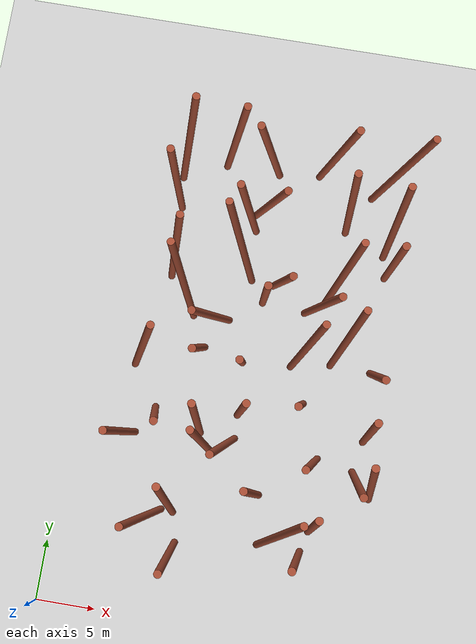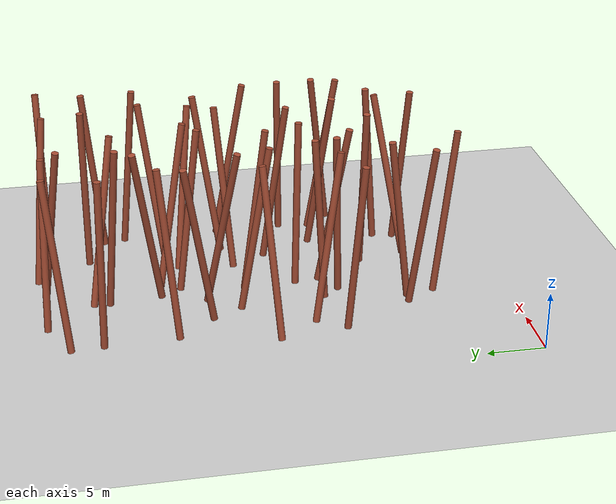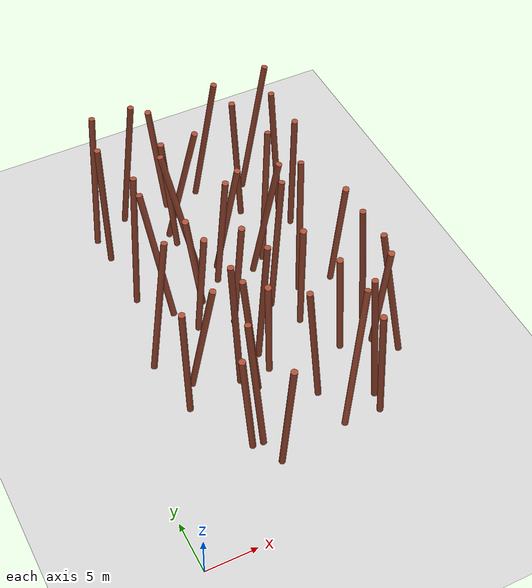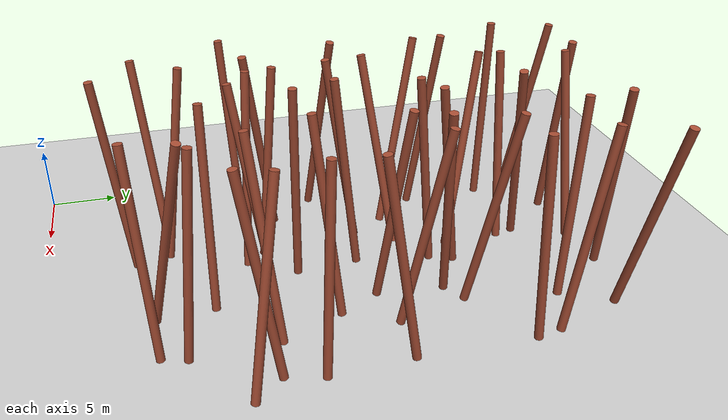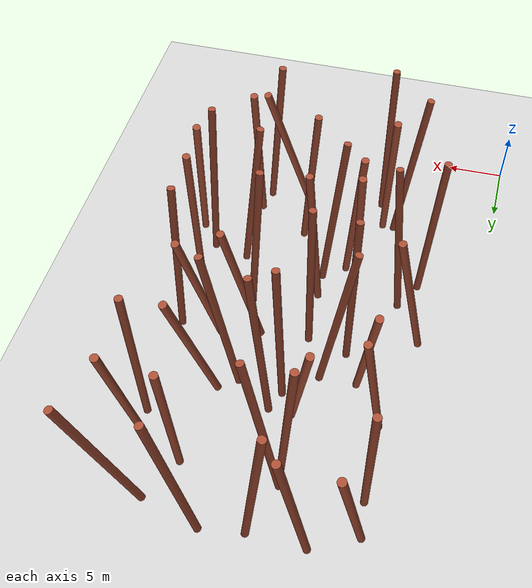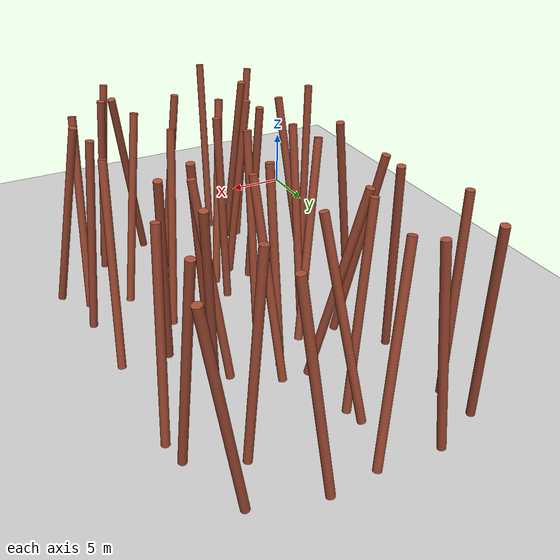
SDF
<sdf version="1.5">
 <world name="default">
  <include><uri>model://sun</uri></include>
  <include><uri>model://ground_plane</uri></include>
  <include><uri>model://asphalt_plane</uri><pose>0 0 -0.000001 0 0 0</pose></include>
  <model name="unit_cylinder_12">
   <pose>8.21517 8.51384 7.70000 0.08725 -0.11731 0.00000</pose>
   <gravity>0 0 0</gravity>
   <link name="link">
    <inertial>
     <mass>100</mass>
     <inertia><ixx>20</ixx><ixy>0</ixy><ixz>0</ixz><iyy>20</iyy><iyz>0</iyz><izz>20</izz></inertia>
    </inertial>
    <collision name="collision">
     <geometry><cylinder><radius>0.300</radius><length>15.000</length></cylinder></geometry>
    </collision>
    <visual name="visual">
     <geometry><cylinder><radius>0.300</radius><length>15.000</length></cylinder></geometry>
     <material>
      <script><name>Gazebo/Bricks</name><uri>file://media/materials/scripts/gazebo.material</uri></script>
     </material>
    </visual>
    <kinematic>1</kinematic>
   </link>
   <static>0</static>
   <plugin name="dynamic_obstacle_motion_12" filename="libobstaclePathPlugin.so">
    <motion_type>proximity_linear</motion_type>
    <direction>0.995938538 0.090035711 0.000000000</direction>
    <velocity>0.513485802</velocity>
    <activation_distance>20.000000000</activation_distance>
    <activation_model>iris</activation_model>
    <orientation>false</orientation>
    <marker_enabled>true</marker_enabled>
    <marker_id>12</marker_id>
    <marker_radius>0.300000000</marker_radius>
    <marker_height>15.000000000</marker_height>
    <marker_rate>20.0</marker_rate>
    <marker_topic>/uav_simulator/dynamic_obstacles</marker_topic>
    <marker_frame>map</marker_frame>
   </plugin>
  </model>
  <model name="unit_cylinder_13">
   <pose>5.41419 14.76799 7.70000 0.06608 -0.05039 0.00000</pose>
   <gravity>0 0 0</gravity>
   <link name="link">
    <inertial>
     <mass>100</mass>
     <inertia><ixx>20</ixx><ixy>0</ixy><ixz>0</ixz><iyy>20</iyy><iyz>0</iyz><izz>20</izz></inertia>
    </inertial>
    <collision name="collision">
     <geometry><cylinder><radius>0.300</radius><length>15.000</length></cylinder></geometry>
    </collision>
    <visual name="visual">
     <geometry><cylinder><radius>0.300</radius><length>15.000</length></cylinder></geometry>
     <material>
      <script><name>Gazebo/Bricks</name><uri>file://media/materials/scripts/gazebo.material</uri></script>
     </material>
    </visual>
   </link>
   <static>1</static>
  </model>
  <model name="unit_cylinder_14">
   <pose>7.78083 16.59841 7.70000 0.14490 0.08780 0.00000</pose>
   <gravity>0 0 0</gravity>
   <link name="link">
    <inertial>
     <mass>100</mass>
     <inertia><ixx>20</ixx><ixy>0</ixy><ixz>0</ixz><iyy>20</iyy><iyz>0</iyz><izz>20</izz></inertia>
    </inertial>
    <collision name="collision">
     <geometry><cylinder><radius>0.300</radius><length>15.000</length></cylinder></geometry>
    </collision>
    <visual name="visual">
     <geometry><cylinder><radius>0.300</radius><length>15.000</length></cylinder></geometry>
     <material>
      <script><name>Gazebo/Bricks</name><uri>file://media/materials/scripts/gazebo.material</uri></script>
     </material>
    </visual>
    <kinematic>1</kinematic>
   </link>
   <static>0</static>
   <plugin name="dynamic_obstacle_motion_14" filename="libobstaclePathPlugin.so">
    <motion_type>proximity_linear</motion_type>
    <direction>0.441147380 -0.897434671 0.000000000</direction>
    <velocity>0.627199507</velocity>
    <activation_distance>20.000000000</activation_distance>
    <activation_model>iris</activation_model>
    <orientation>false</orientation>
    <marker_enabled>true</marker_enabled>
    <marker_id>14</marker_id>
    <marker_radius>0.300000000</marker_radius>
    <marker_height>15.000000000</marker_height>
    <marker_rate>20.0</marker_rate>
    <marker_topic>/uav_simulator/dynamic_obstacles</marker_topic>
    <marker_frame>map</marker_frame>
   </plugin>
  </model>
  <model name="unit_cylinder_15">
   <pose>5.89723 21.64331 7.70000 -0.07898 0.15290 0.00000</pose>
   <gravity>0 0 0</gravity>
   <link name="link">
    <inertial>
     <mass>100</mass>
     <inertia><ixx>20</ixx><ixy>0</ixy><ixz>0</ixz><iyy>20</iyy><iyz>0</iyz><izz>20</izz></inertia>
    </inertial>
    <collision name="collision">
     <geometry><cylinder><radius>0.300</radius><length>15.000</length></cylinder></geometry>
    </collision>
    <visual name="visual">
     <geometry><cylinder><radius>0.300</radius><length>15.000</length></cylinder></geometry>
     <material>
      <script><name>Gazebo/Bricks</name><uri>file://media/materials/scripts/gazebo.material</uri></script>
     </material>
    </visual>
   </link>
   <static>1</static>
  </model>
  <model name="unit_cylinder_16">
   <pose>8.23481 27.26998 7.70000 -0.16573 -0.11002 0.00000</pose>
   <gravity>0 0 0</gravity>
   <link name="link">
    <inertial>
     <mass>100</mass>
     <inertia><ixx>20</ixx><ixy>0</ixy><ixz>0</ixz><iyy>20</iyy><iyz>0</iyz><izz>20</izz></inertia>
    </inertial>
    <collision name="collision">
     <geometry><cylinder><radius>0.300</radius><length>15.000</length></cylinder></geometry>
    </collision>
    <visual name="visual">
     <geometry><cylinder><radius>0.300</radius><length>15.000</length></cylinder></geometry>
     <material>
      <script><name>Gazebo/Bricks</name><uri>file://media/materials/scripts/gazebo.material</uri></script>
     </material>
    </visual>
    <kinematic>1</kinematic>
   </link>
   <static>0</static>
   <plugin name="dynamic_obstacle_motion_16" filename="libobstaclePathPlugin.so">
    <motion_type>proximity_linear</motion_type>
    <direction>-0.396383134 0.918085187 0.000000000</direction>
    <velocity>0.545856722</velocity>
    <activation_distance>20.000000000</activation_distance>
    <activation_model>iris</activation_model>
    <orientation>false</orientation>
    <marker_enabled>true</marker_enabled>
    <marker_id>16</marker_id>
    <marker_radius>0.300000000</marker_radius>
    <marker_height>15.000000000</marker_height>
    <marker_rate>20.0</marker_rate>
    <marker_topic>/uav_simulator/dynamic_obstacles</marker_topic>
    <marker_frame>map</marker_frame>
   </plugin>
  </model>
  <model name="unit_cylinder_17">
   <pose>7.14097 29.90582 7.70000 -0.09009 0.08101 0.00000</pose>
   <gravity>0 0 0</gravity>
   <link name="link">
    <inertial>
     <mass>100</mass>
     <inertia><ixx>20</ixx><ixy>0</ixy><ixz>0</ixz><iyy>20</iyy><iyz>0</iyz><izz>20</izz></inertia>
    </inertial>
    <collision name="collision">
     <geometry><cylinder><radius>0.300</radius><length>15.000</length></cylinder></geometry>
    </collision>
    <visual name="visual">
     <geometry><cylinder><radius>0.300</radius><length>15.000</length></cylinder></geometry>
     <material>
      <script><name>Gazebo/Bricks</name><uri>file://media/materials/scripts/gazebo.material</uri></script>
     </material>
    </visual>
    <kinematic>1</kinematic>
   </link>
   <static>0</static>
   <plugin name="dynamic_obstacle_motion_17" filename="libobstaclePathPlugin.so">
    <motion_type>proximity_linear</motion_type>
    <direction>-0.793099003 -0.609092744 0.000000000</direction>
    <velocity>0.191172605</velocity>
    <activation_distance>20.000000000</activation_distance>
    <activation_model>iris</activation_model>
    <orientation>false</orientation>
    <marker_enabled>true</marker_enabled>
    <marker_id>17</marker_id>
    <marker_radius>0.300000000</marker_radius>
    <marker_height>15.000000000</marker_height>
    <marker_rate>20.0</marker_rate>
    <marker_topic>/uav_simulator/dynamic_obstacles</marker_topic>
    <marker_frame>map</marker_frame>
   </plugin>
  </model>
  <model name="unit_cylinder_18">
   <pose>6.31902 35.40291 7.70000 0.00913 -0.01244 0.00000</pose>
   <gravity>0 0 0</gravity>
   <link name="link">
    <inertial>
     <mass>100</mass>
     <inertia><ixx>20</ixx><ixy>0</ixy><ixz>0</ixz><iyy>20</iyy><iyz>0</iyz><izz>20</izz></inertia>
    </inertial>
    <collision name="collision">
     <geometry><cylinder><radius>0.300</radius><length>15.000</length></cylinder></geometry>
    </collision>
    <visual name="visual">
     <geometry><cylinder><radius>0.300</radius><length>15.000</length></cylinder></geometry>
     <material>
      <script><name>Gazebo/Bricks</name><uri>file://media/materials/scripts/gazebo.material</uri></script>
     </material>
    </visual>
   </link>
   <static>1</static>
  </model>
  <model name="unit_cylinder_19">
   <pose>6.73714 38.90412 7.70000 -0.09685 0.08952 0.00000</pose>
   <gravity>0 0 0</gravity>
   <link name="link">
    <inertial>
     <mass>100</mass>
     <inertia><ixx>20</ixx><ixy>0</ixy><ixz>0</ixz><iyy>20</iyy><iyz>0</iyz><izz>20</izz></inertia>
    </inertial>
    <collision name="collision">
     <geometry><cylinder><radius>0.300</radius><length>15.000</length></cylinder></geometry>
    </collision>
    <visual name="visual">
     <geometry><cylinder><radius>0.300</radius><length>15.000</length></cylinder></geometry>
     <material>
      <script><name>Gazebo/Bricks</name><uri>file://media/materials/scripts/gazebo.material</uri></script>
     </material>
    </visual>
   </link>
   <static>1</static>
  </model>
  <model name="unit_cylinder_31">
   <pose>10.62233 5.86521 7.70000 0.09819 -0.00858 0.00000</pose>
   <gravity>0 0 0</gravity>
   <link name="link">
    <inertial>
     <mass>100</mass>
     <inertia><ixx>20</ixx><ixy>0</ixy><ixz>0</ixz><iyy>20</iyy><iyz>0</iyz><izz>20</izz></inertia>
    </inertial>
    <collision name="collision">
     <geometry><cylinder><radius>0.300</radius><length>15.000</length></cylinder></geometry>
    </collision>
    <visual name="visual">
     <geometry><cylinder><radius>0.300</radius><length>15.000</length></cylinder></geometry>
     <material>
      <script><name>Gazebo/Bricks</name><uri>file://media/materials/scripts/gazebo.material</uri></script>
     </material>
    </visual>
    <kinematic>1</kinematic>
   </link>
   <static>0</static>
   <plugin name="dynamic_obstacle_motion_31" filename="libobstaclePathPlugin.so">
    <motion_type>proximity_linear</motion_type>
    <direction>0.941621761 0.336672631 0.000000000</direction>
    <velocity>0.304543873</velocity>
    <activation_distance>20.000000000</activation_distance>
    <activation_model>iris</activation_model>
    <orientation>false</orientation>
    <marker_enabled>true</marker_enabled>
    <marker_id>31</marker_id>
    <marker_radius>0.300000000</marker_radius>
    <marker_height>15.000000000</marker_height>
    <marker_rate>20.0</marker_rate>
    <marker_topic>/uav_simulator/dynamic_obstacles</marker_topic>
    <marker_frame>map</marker_frame>
   </plugin>
  </model>
  <model name="unit_cylinder_32">
   <pose>9.75933 10.02540 7.70000 -0.12920 -0.04675 0.00000</pose>
   <gravity>0 0 0</gravity>
   <link name="link">
    <inertial>
     <mass>100</mass>
     <inertia><ixx>20</ixx><ixy>0</ixy><ixz>0</ixz><iyy>20</iyy><iyz>0</iyz><izz>20</izz></inertia>
    </inertial>
    <collision name="collision">
     <geometry><cylinder><radius>0.300</radius><length>15.000</length></cylinder></geometry>
    </collision>
    <visual name="visual">
     <geometry><cylinder><radius>0.300</radius><length>15.000</length></cylinder></geometry>
     <material>
      <script><name>Gazebo/Bricks</name><uri>file://media/materials/scripts/gazebo.material</uri></script>
     </material>
    </visual>
   </link>
   <static>1</static>
  </model>
  <model name="unit_cylinder_33">
   <pose>11.75306 14.98486 7.70000 -0.04157 -0.08951 0.00000</pose>
   <gravity>0 0 0</gravity>
   <link name="link">
    <inertial>
     <mass>100</mass>
     <inertia><ixx>20</ixx><ixy>0</ixy><ixz>0</ixz><iyy>20</iyy><iyz>0</iyz><izz>20</izz></inertia>
    </inertial>
    <collision name="collision">
     <geometry><cylinder><radius>0.300</radius><length>15.000</length></cylinder></geometry>
    </collision>
    <visual name="visual">
     <geometry><cylinder><radius>0.300</radius><length>15.000</length></cylinder></geometry>
     <material>
      <script><name>Gazebo/Bricks</name><uri>file://media/materials/scripts/gazebo.material</uri></script>
     </material>
    </visual>
   </link>
   <static>1</static>
  </model>
  <model name="unit_cylinder_34">
   <pose>11.08620 16.61533 7.70000 -0.07178 -0.02795 0.00000</pose>
   <gravity>0 0 0</gravity>
   <link name="link">
    <inertial>
     <mass>100</mass>
     <inertia><ixx>20</ixx><ixy>0</ixy><ixz>0</ixz><iyy>20</iyy><iyz>0</iyz><izz>20</izz></inertia>
    </inertial>
    <collision name="collision">
     <geometry><cylinder><radius>0.300</radius><length>15.000</length></cylinder></geometry>
    </collision>
    <visual name="visual">
     <geometry><cylinder><radius>0.300</radius><length>15.000</length></cylinder></geometry>
     <material>
      <script><name>Gazebo/Bricks</name><uri>file://media/materials/scripts/gazebo.material</uri></script>
     </material>
    </visual>
    <kinematic>1</kinematic>
   </link>
   <static>0</static>
   <plugin name="dynamic_obstacle_motion_34" filename="libobstaclePathPlugin.so">
    <motion_type>proximity_linear</motion_type>
    <direction>-0.805528988 -0.592556368 0.000000000</direction>
    <velocity>0.839050458</velocity>
    <activation_distance>20.000000000</activation_distance>
    <activation_model>iris</activation_model>
    <orientation>false</orientation>
    <marker_enabled>true</marker_enabled>
    <marker_id>34</marker_id>
    <marker_radius>0.300000000</marker_radius>
    <marker_height>15.000000000</marker_height>
    <marker_rate>20.0</marker_rate>
    <marker_topic>/uav_simulator/dynamic_obstacles</marker_topic>
    <marker_frame>map</marker_frame>
   </plugin>
  </model>
  <model name="unit_cylinder_35">
   <pose>10.35482 22.26778 7.70000 0.16136 -0.01436 0.00000</pose>
   <gravity>0 0 0</gravity>
   <link name="link">
    <inertial>
     <mass>100</mass>
     <inertia><ixx>20</ixx><ixy>0</ixy><ixz>0</ixz><iyy>20</iyy><iyz>0</iyz><izz>20</izz></inertia>
    </inertial>
    <collision name="collision">
     <geometry><cylinder><radius>0.300</radius><length>15.000</length></cylinder></geometry>
    </collision>
    <visual name="visual">
     <geometry><cylinder><radius>0.300</radius><length>15.000</length></cylinder></geometry>
     <material>
      <script><name>Gazebo/Bricks</name><uri>file://media/materials/scripts/gazebo.material</uri></script>
     </material>
    </visual>
   </link>
   <static>1</static>
  </model>
  <model name="unit_cylinder_36">
   <pose>10.95184 24.97060 7.70000 0.15713 -0.16388 0.00000</pose>
   <gravity>0 0 0</gravity>
   <link name="link">
    <inertial>
     <mass>100</mass>
     <inertia><ixx>20</ixx><ixy>0</ixy><ixz>0</ixz><iyy>20</iyy><iyz>0</iyz><izz>20</izz></inertia>
    </inertial>
    <collision name="collision">
     <geometry><cylinder><radius>0.300</radius><length>15.000</length></cylinder></geometry>
    </collision>
    <visual name="visual">
     <geometry><cylinder><radius>0.300</radius><length>15.000</length></cylinder></geometry>
     <material>
      <script><name>Gazebo/Bricks</name><uri>file://media/materials/scripts/gazebo.material</uri></script>
     </material>
    </visual>
    <kinematic>1</kinematic>
   </link>
   <static>0</static>
   <plugin name="dynamic_obstacle_motion_36" filename="libobstaclePathPlugin.so">
    <motion_type>proximity_linear</motion_type>
    <direction>0.986785743 -0.162030542 0.000000000</direction>
    <velocity>0.523264352</velocity>
    <activation_distance>20.000000000</activation_distance>
    <activation_model>iris</activation_model>
    <orientation>false</orientation>
    <marker_enabled>true</marker_enabled>
    <marker_id>36</marker_id>
    <marker_radius>0.300000000</marker_radius>
    <marker_height>15.000000000</marker_height>
    <marker_rate>20.0</marker_rate>
    <marker_topic>/uav_simulator/dynamic_obstacles</marker_topic>
    <marker_frame>map</marker_frame>
   </plugin>
  </model>
  <model name="unit_cylinder_37">
   <pose>12.32426 31.04766 7.70000 -0.15146 -0.16482 0.00000</pose>
   <gravity>0 0 0</gravity>
   <link name="link">
    <inertial>
     <mass>100</mass>
     <inertia><ixx>20</ixx><ixy>0</ixy><ixz>0</ixz><iyy>20</iyy><iyz>0</iyz><izz>20</izz></inertia>
    </inertial>
    <collision name="collision">
     <geometry><cylinder><radius>0.300</radius><length>15.000</length></cylinder></geometry>
    </collision>
    <visual name="visual">
     <geometry><cylinder><radius>0.300</radius><length>15.000</length></cylinder></geometry>
     <material>
      <script><name>Gazebo/Bricks</name><uri>file://media/materials/scripts/gazebo.material</uri></script>
     </material>
    </visual>
    <kinematic>1</kinematic>
   </link>
   <static>0</static>
   <plugin name="dynamic_obstacle_motion_37" filename="libobstaclePathPlugin.so">
    <motion_type>proximity_linear</motion_type>
    <direction>-0.922083876 -0.386990085 0.000000000</direction>
    <velocity>0.522626707</velocity>
    <activation_distance>20.000000000</activation_distance>
    <activation_model>iris</activation_model>
    <orientation>false</orientation>
    <marker_enabled>true</marker_enabled>
    <marker_id>37</marker_id>
    <marker_radius>0.300000000</marker_radius>
    <marker_height>15.000000000</marker_height>
    <marker_rate>20.0</marker_rate>
    <marker_topic>/uav_simulator/dynamic_obstacles</marker_topic>
    <marker_frame>map</marker_frame>
   </plugin>
  </model>
  <model name="unit_cylinder_38">
   <pose>12.47575 33.96208 7.70000 0.05793 -0.09766 0.00000</pose>
   <gravity>0 0 0</gravity>
   <link name="link">
    <inertial>
     <mass>100</mass>
     <inertia><ixx>20</ixx><ixy>0</ixy><ixz>0</ixz><iyy>20</iyy><iyz>0</iyz><izz>20</izz></inertia>
    </inertial>
    <collision name="collision">
     <geometry><cylinder><radius>0.300</radius><length>15.000</length></cylinder></geometry>
    </collision>
    <visual name="visual">
     <geometry><cylinder><radius>0.300</radius><length>15.000</length></cylinder></geometry>
     <material>
      <script><name>Gazebo/Bricks</name><uri>file://media/materials/scripts/gazebo.material</uri></script>
     </material>
    </visual>
   </link>
   <static>1</static>
  </model>
  <model name="unit_cylinder_39">
   <pose>10.51650 39.66156 7.70000 0.02668 0.10310 0.00000</pose>
   <gravity>0 0 0</gravity>
   <link name="link">
    <inertial>
     <mass>100</mass>
     <inertia><ixx>20</ixx><ixy>0</ixy><ixz>0</ixz><iyy>20</iyy><iyz>0</iyz><izz>20</izz></inertia>
    </inertial>
    <collision name="collision">
     <geometry><cylinder><radius>0.300</radius><length>15.000</length></cylinder></geometry>
    </collision>
    <visual name="visual">
     <geometry><cylinder><radius>0.300</radius><length>15.000</length></cylinder></geometry>
     <material>
      <script><name>Gazebo/Bricks</name><uri>file://media/materials/scripts/gazebo.material</uri></script>
     </material>
    </visual>
   </link>
   <static>1</static>
  </model>
  <model name="unit_cylinder_52">
   <pose>16.28005 11.67969 7.70000 -0.00035 -0.10513 0.00000</pose>
   <gravity>0 0 0</gravity>
   <link name="link">
    <inertial>
     <mass>100</mass>
     <inertia><ixx>20</ixx><ixy>0</ixy><ixz>0</ixz><iyy>20</iyy><iyz>0</iyz><izz>20</izz></inertia>
    </inertial>
    <collision name="collision">
     <geometry><cylinder><radius>0.300</radius><length>15.000</length></cylinder></geometry>
    </collision>
    <visual name="visual">
     <geometry><cylinder><radius>0.300</radius><length>15.000</length></cylinder></geometry>
     <material>
      <script><name>Gazebo/Bricks</name><uri>file://media/materials/scripts/gazebo.material</uri></script>
     </material>
    </visual>
   </link>
   <static>1</static>
  </model>
  <model name="unit_cylinder_53">
   <pose>13.49913 14.95605 7.70000 0.14993 -0.10484 0.00000</pose>
   <gravity>0 0 0</gravity>
   <link name="link">
    <inertial>
     <mass>100</mass>
     <inertia><ixx>20</ixx><ixy>0</ixy><ixz>0</ixz><iyy>20</iyy><iyz>0</iyz><izz>20</izz></inertia>
    </inertial>
    <collision name="collision">
     <geometry><cylinder><radius>0.300</radius><length>15.000</length></cylinder></geometry>
    </collision>
    <visual name="visual">
     <geometry><cylinder><radius>0.300</radius><length>15.000</length></cylinder></geometry>
     <material>
      <script><name>Gazebo/Bricks</name><uri>file://media/materials/scripts/gazebo.material</uri></script>
     </material>
    </visual>
   </link>
   <static>1</static>
  </model>
  <model name="unit_cylinder_54">
   <pose>14.44280 17.95082 7.70000 0.02150 0.03398 0.00000</pose>
   <gravity>0 0 0</gravity>
   <link name="link">
    <inertial>
     <mass>100</mass>
     <inertia><ixx>20</ixx><ixy>0</ixy><ixz>0</ixz><iyy>20</iyy><iyz>0</iyz><izz>20</izz></inertia>
    </inertial>
    <collision name="collision">
     <geometry><cylinder><radius>0.300</radius><length>15.000</length></cylinder></geometry>
    </collision>
    <visual name="visual">
     <geometry><cylinder><radius>0.300</radius><length>15.000</length></cylinder></geometry>
     <material>
      <script><name>Gazebo/Bricks</name><uri>file://media/materials/scripts/gazebo.material</uri></script>
     </material>
    </visual>
   </link>
   <static>1</static>
  </model>
  <model name="unit_cylinder_55">
   <pose>13.81095 21.73694 7.70000 0.12512 -0.01164 0.00000</pose>
   <gravity>0 0 0</gravity>
   <link name="link">
    <inertial>
     <mass>100</mass>
     <inertia><ixx>20</ixx><ixy>0</ixy><ixz>0</ixz><iyy>20</iyy><iyz>0</iyz><izz>20</izz></inertia>
    </inertial>
    <collision name="collision">
     <geometry><cylinder><radius>0.300</radius><length>15.000</length></cylinder></geometry>
    </collision>
    <visual name="visual">
     <geometry><cylinder><radius>0.300</radius><length>15.000</length></cylinder></geometry>
     <material>
      <script><name>Gazebo/Bricks</name><uri>file://media/materials/scripts/gazebo.material</uri></script>
     </material>
    </visual>
   </link>
   <static>1</static>
  </model>
  <model name="unit_cylinder_56">
   <pose>14.83115 27.28360 7.70000 0.11515 0.00834 0.00000</pose>
   <gravity>0 0 0</gravity>
   <link name="link">
    <inertial>
     <mass>100</mass>
     <inertia><ixx>20</ixx><ixy>0</ixy><ixz>0</ixz><iyy>20</iyy><iyz>0</iyz><izz>20</izz></inertia>
    </inertial>
    <collision name="collision">
     <geometry><cylinder><radius>0.300</radius><length>15.000</length></cylinder></geometry>
    </collision>
    <visual name="visual">
     <geometry><cylinder><radius>0.300</radius><length>15.000</length></cylinder></geometry>
     <material>
      <script><name>Gazebo/Bricks</name><uri>file://media/materials/scripts/gazebo.material</uri></script>
     </material>
    </visual>
   </link>
   <static>1</static>
  </model>
  <model name="unit_cylinder_57">
   <pose>16.00750 28.59517 7.70000 0.15929 0.07561 0.00000</pose>
   <gravity>0 0 0</gravity>
   <link name="link">
    <inertial>
     <mass>100</mass>
     <inertia><ixx>20</ixx><ixy>0</ixy><ixz>0</ixz><iyy>20</iyy><iyz>0</iyz><izz>20</izz></inertia>
    </inertial>
    <collision name="collision">
     <geometry><cylinder><radius>0.300</radius><length>15.000</length></cylinder></geometry>
    </collision>
    <visual name="visual">
     <geometry><cylinder><radius>0.300</radius><length>15.000</length></cylinder></geometry>
     <material>
      <script><name>Gazebo/Bricks</name><uri>file://media/materials/scripts/gazebo.material</uri></script>
     </material>
    </visual>
    <kinematic>1</kinematic>
   </link>
   <static>0</static>
   <plugin name="dynamic_obstacle_motion_57" filename="libobstaclePathPlugin.so">
    <motion_type>proximity_linear</motion_type>
    <direction>0.526953848 0.849893901 -0.000000000</direction>
    <velocity>0.597910536</velocity>
    <activation_distance>20.000000000</activation_distance>
    <activation_model>iris</activation_model>
    <orientation>false</orientation>
    <marker_enabled>true</marker_enabled>
    <marker_id>57</marker_id>
    <marker_radius>0.300000000</marker_radius>
    <marker_height>15.000000000</marker_height>
    <marker_rate>20.0</marker_rate>
    <marker_topic>/uav_simulator/dynamic_obstacles</marker_topic>
    <marker_frame>map</marker_frame>
   </plugin>
  </model>
  <model name="unit_cylinder_58">
   <pose>14.08418 34.70862 7.70000 0.14385 0.15441 0.00000</pose>
   <gravity>0 0 0</gravity>
   <link name="link">
    <inertial>
     <mass>100</mass>
     <inertia><ixx>20</ixx><ixy>0</ixy><ixz>0</ixz><iyy>20</iyy><iyz>0</iyz><izz>20</izz></inertia>
    </inertial>
    <collision name="collision">
     <geometry><cylinder><radius>0.300</radius><length>15.000</length></cylinder></geometry>
    </collision>
    <visual name="visual">
     <geometry><cylinder><radius>0.300</radius><length>15.000</length></cylinder></geometry>
     <material>
      <script><name>Gazebo/Bricks</name><uri>file://media/materials/scripts/gazebo.material</uri></script>
     </material>
    </visual>
    <kinematic>1</kinematic>
   </link>
   <static>0</static>
   <plugin name="dynamic_obstacle_motion_58" filename="libobstaclePathPlugin.so">
    <motion_type>proximity_linear</motion_type>
    <direction>-0.673704427 -0.739000910 0.000000000</direction>
    <velocity>1.136233322</velocity>
    <activation_distance>20.000000000</activation_distance>
    <activation_model>iris</activation_model>
    <orientation>false</orientation>
    <marker_enabled>true</marker_enabled>
    <marker_id>58</marker_id>
    <marker_radius>0.300000000</marker_radius>
    <marker_height>15.000000000</marker_height>
    <marker_rate>20.0</marker_rate>
    <marker_topic>/uav_simulator/dynamic_obstacles</marker_topic>
    <marker_frame>map</marker_frame>
   </plugin>
  </model>
  <model name="unit_cylinder_59">
   <pose>13.47687 38.98313 7.70000 0.10550 -0.13182 0.00000</pose>
   <gravity>0 0 0</gravity>
   <link name="link">
    <inertial>
     <mass>100</mass>
     <inertia><ixx>20</ixx><ixy>0</ixy><ixz>0</ixz><iyy>20</iyy><iyz>0</iyz><izz>20</izz></inertia>
    </inertial>
    <collision name="collision">
     <geometry><cylinder><radius>0.300</radius><length>15.000</length></cylinder></geometry>
    </collision>
    <visual name="visual">
     <geometry><cylinder><radius>0.300</radius><length>15.000</length></cylinder></geometry>
     <material>
      <script><name>Gazebo/Bricks</name><uri>file://media/materials/scripts/gazebo.material</uri></script>
     </material>
    </visual>
   </link>
   <static>1</static>
  </model>
  <model name="unit_cylinder_71">
   <pose>20.45233 7.19638 7.70000 0.05097 -0.10483 0.00000</pose>
   <gravity>0 0 0</gravity>
   <link name="link">
    <inertial>
     <mass>100</mass>
     <inertia><ixx>20</ixx><ixy>0</ixy><ixz>0</ixz><iyy>20</iyy><iyz>0</iyz><izz>20</izz></inertia>
    </inertial>
    <collision name="collision">
     <geometry><cylinder><radius>0.300</radius><length>15.000</length></cylinder></geometry>
    </collision>
    <visual name="visual">
     <geometry><cylinder><radius>0.300</radius><length>15.000</length></cylinder></geometry>
     <material>
      <script><name>Gazebo/Bricks</name><uri>file://media/materials/scripts/gazebo.material</uri></script>
     </material>
    </visual>
    <kinematic>1</kinematic>
   </link>
   <static>0</static>
   <plugin name="dynamic_obstacle_motion_71" filename="libobstaclePathPlugin.so">
    <motion_type>proximity_linear</motion_type>
    <direction>-0.734474025 -0.678636801 0.000000000</direction>
    <velocity>1.929991831</velocity>
    <activation_distance>20.000000000</activation_distance>
    <activation_model>iris</activation_model>
    <orientation>false</orientation>
    <marker_enabled>true</marker_enabled>
    <marker_id>71</marker_id>
    <marker_radius>0.300000000</marker_radius>
    <marker_height>15.000000000</marker_height>
    <marker_rate>20.0</marker_rate>
    <marker_topic>/uav_simulator/dynamic_obstacles</marker_topic>
    <marker_frame>map</marker_frame>
   </plugin>
  </model>
  <model name="unit_cylinder_72">
   <pose>18.79728 8.77237 7.70000 -0.16252 0.17001 0.00000</pose>
   <gravity>0 0 0</gravity>
   <link name="link">
    <inertial>
     <mass>100</mass>
     <inertia><ixx>20</ixx><ixy>0</ixy><ixz>0</ixz><iyy>20</iyy><iyz>0</iyz><izz>20</izz></inertia>
    </inertial>
    <collision name="collision">
     <geometry><cylinder><radius>0.300</radius><length>15.000</length></cylinder></geometry>
    </collision>
    <visual name="visual">
     <geometry><cylinder><radius>0.300</radius><length>15.000</length></cylinder></geometry>
     <material>
      <script><name>Gazebo/Bricks</name><uri>file://media/materials/scripts/gazebo.material</uri></script>
     </material>
    </visual>
   </link>
   <static>1</static>
  </model>
  <model name="unit_cylinder_73">
   <pose>20.54561 14.69287 7.70000 0.11079 -0.13135 0.00000</pose>
   <gravity>0 0 0</gravity>
   <link name="link">
    <inertial>
     <mass>100</mass>
     <inertia><ixx>20</ixx><ixy>0</ixy><ixz>0</ixz><iyy>20</iyy><iyz>0</iyz><izz>20</izz></inertia>
    </inertial>
    <collision name="collision">
     <geometry><cylinder><radius>0.300</radius><length>15.000</length></cylinder></geometry>
    </collision>
    <visual name="visual">
     <geometry><cylinder><radius>0.300</radius><length>15.000</length></cylinder></geometry>
     <material>
      <script><name>Gazebo/Bricks</name><uri>file://media/materials/scripts/gazebo.material</uri></script>
     </material>
    </visual>
   </link>
   <static>1</static>
  </model>
  <model name="unit_cylinder_74">
   <pose>18.99965 19.09175 7.70000 0.12146 -0.08443 0.00000</pose>
   <gravity>0 0 0</gravity>
   <link name="link">
    <inertial>
     <mass>100</mass>
     <inertia><ixx>20</ixx><ixy>0</ixy><ixz>0</ixz><iyy>20</iyy><iyz>0</iyz><izz>20</izz></inertia>
    </inertial>
    <collision name="collision">
     <geometry><cylinder><radius>0.300</radius><length>15.000</length></cylinder></geometry>
    </collision>
    <visual name="visual">
     <geometry><cylinder><radius>0.300</radius><length>15.000</length></cylinder></geometry>
     <material>
      <script><name>Gazebo/Bricks</name><uri>file://media/materials/scripts/gazebo.material</uri></script>
     </material>
    </visual>
   </link>
   <static>1</static>
  </model>
  <model name="unit_cylinder_75">
   <pose>18.74578 23.63822 7.70000 -0.08821 0.09516 0.00000</pose>
   <gravity>0 0 0</gravity>
   <link name="link">
    <inertial>
     <mass>100</mass>
     <inertia><ixx>20</ixx><ixy>0</ixy><ixz>0</ixz><iyy>20</iyy><iyz>0</iyz><izz>20</izz></inertia>
    </inertial>
    <collision name="collision">
     <geometry><cylinder><radius>0.300</radius><length>15.000</length></cylinder></geometry>
    </collision>
    <visual name="visual">
     <geometry><cylinder><radius>0.300</radius><length>15.000</length></cylinder></geometry>
     <material>
      <script><name>Gazebo/Bricks</name><uri>file://media/materials/scripts/gazebo.material</uri></script>
     </material>
    </visual>
   </link>
   <static>1</static>
  </model>
  <model name="unit_cylinder_76">
   <pose>19.40873 27.16889 7.70000 0.08984 0.12076 0.00000</pose>
   <gravity>0 0 0</gravity>
   <link name="link">
    <inertial>
     <mass>100</mass>
     <inertia><ixx>20</ixx><ixy>0</ixy><ixz>0</ixz><iyy>20</iyy><iyz>0</iyz><izz>20</izz></inertia>
    </inertial>
    <collision name="collision">
     <geometry><cylinder><radius>0.300</radius><length>15.000</length></cylinder></geometry>
    </collision>
    <visual name="visual">
     <geometry><cylinder><radius>0.300</radius><length>15.000</length></cylinder></geometry>
     <material>
      <script><name>Gazebo/Bricks</name><uri>file://media/materials/scripts/gazebo.material</uri></script>
     </material>
    </visual>
   </link>
   <static>1</static>
  </model>
  <model name="unit_cylinder_77">
   <pose>20.68333 29.74196 7.70000 -0.12683 0.08642 0.00000</pose>
   <gravity>0 0 0</gravity>
   <link name="link">
    <inertial>
     <mass>100</mass>
     <inertia><ixx>20</ixx><ixy>0</ixy><ixz>0</ixz><iyy>20</iyy><iyz>0</iyz><izz>20</izz></inertia>
    </inertial>
    <collision name="collision">
     <geometry><cylinder><radius>0.300</radius><length>15.000</length></cylinder></geometry>
    </collision>
    <visual name="visual">
     <geometry><cylinder><radius>0.300</radius><length>15.000</length></cylinder></geometry>
     <material>
      <script><name>Gazebo/Bricks</name><uri>file://media/materials/scripts/gazebo.material</uri></script>
     </material>
    </visual>
    <kinematic>1</kinematic>
   </link>
   <static>0</static>
   <plugin name="dynamic_obstacle_motion_77" filename="libobstaclePathPlugin.so">
    <motion_type>proximity_linear</motion_type>
    <direction>0.736576509 0.676354231 0.000000000</direction>
    <velocity>0.297112664</velocity>
    <activation_distance>20.000000000</activation_distance>
    <activation_model>iris</activation_model>
    <orientation>false</orientation>
    <marker_enabled>true</marker_enabled>
    <marker_id>77</marker_id>
    <marker_radius>0.300000000</marker_radius>
    <marker_height>15.000000000</marker_height>
    <marker_rate>20.0</marker_rate>
    <marker_topic>/uav_simulator/dynamic_obstacles</marker_topic>
    <marker_frame>map</marker_frame>
   </plugin>
  </model>
  <model name="unit_cylinder_78">
   <pose>20.52641 35.63094 7.70000 -0.01053 -0.06078 0.00000</pose>
   <gravity>0 0 0</gravity>
   <link name="link">
    <inertial>
     <mass>100</mass>
     <inertia><ixx>20</ixx><ixy>0</ixy><ixz>0</ixz><iyy>20</iyy><iyz>0</iyz><izz>20</izz></inertia>
    </inertial>
    <collision name="collision">
     <geometry><cylinder><radius>0.300</radius><length>15.000</length></cylinder></geometry>
    </collision>
    <visual name="visual">
     <geometry><cylinder><radius>0.300</radius><length>15.000</length></cylinder></geometry>
     <material>
      <script><name>Gazebo/Bricks</name><uri>file://media/materials/scripts/gazebo.material</uri></script>
     </material>
    </visual>
   </link>
   <static>1</static>
  </model>
  <model name="unit_cylinder_79">
   <pose>18.86415 39.61155 7.70000 0.08179 0.12048 0.00000</pose>
   <gravity>0 0 0</gravity>
   <link name="link">
    <inertial>
     <mass>100</mass>
     <inertia><ixx>20</ixx><ixy>0</ixy><ixz>0</ixz><iyy>20</iyy><iyz>0</iyz><izz>20</izz></inertia>
    </inertial>
    <collision name="collision">
     <geometry><cylinder><radius>0.300</radius><length>15.000</length></cylinder></geometry>
    </collision>
    <visual name="visual">
     <geometry><cylinder><radius>0.300</radius><length>15.000</length></cylinder></geometry>
     <material>
      <script><name>Gazebo/Bricks</name><uri>file://media/materials/scripts/gazebo.material</uri></script>
     </material>
    </visual>
    <kinematic>1</kinematic>
   </link>
   <static>0</static>
   <plugin name="dynamic_obstacle_motion_79" filename="libobstaclePathPlugin.so">
    <motion_type>proximity_linear</motion_type>
    <direction>0.226051030 0.974115461 0.000000000</direction>
    <velocity>0.981980058</velocity>
    <activation_distance>20.000000000</activation_distance>
    <activation_model>iris</activation_model>
    <orientation>false</orientation>
    <marker_enabled>true</marker_enabled>
    <marker_id>79</marker_id>
    <marker_radius>0.300000000</marker_radius>
    <marker_height>15.000000000</marker_height>
    <marker_rate>20.0</marker_rate>
    <marker_topic>/uav_simulator/dynamic_obstacles</marker_topic>
    <marker_frame>map</marker_frame>
   </plugin>
  </model>
  <model name="unit_cylinder_92">
   <pose>21.35000 9.91897 7.70000 -0.08006 -0.04341 0.00000</pose>
   <gravity>0 0 0</gravity>
   <link name="link">
    <inertial>
     <mass>100</mass>
     <inertia><ixx>20</ixx><ixy>0</ixy><ixz>0</ixz><iyy>20</iyy><iyz>0</iyz><izz>20</izz></inertia>
    </inertial>
    <collision name="collision">
     <geometry><cylinder><radius>0.300</radius><length>15.000</length></cylinder></geometry>
    </collision>
    <visual name="visual">
     <geometry><cylinder><radius>0.300</radius><length>15.000</length></cylinder></geometry>
     <material>
      <script><name>Gazebo/Bricks</name><uri>file://media/materials/scripts/gazebo.material</uri></script>
     </material>
    </visual>
   </link>
   <static>1</static>
  </model>
  <model name="unit_cylinder_93">
   <pose>24.23638 13.75703 7.70000 0.15385 -0.05172 0.00000</pose>
   <gravity>0 0 0</gravity>
   <link name="link">
    <inertial>
     <mass>100</mass>
     <inertia><ixx>20</ixx><ixy>0</ixy><ixz>0</ixz><iyy>20</iyy><iyz>0</iyz><izz>20</izz></inertia>
    </inertial>
    <collision name="collision">
     <geometry><cylinder><radius>0.300</radius><length>15.000</length></cylinder></geometry>
    </collision>
    <visual name="visual">
     <geometry><cylinder><radius>0.300</radius><length>15.000</length></cylinder></geometry>
     <material>
      <script><name>Gazebo/Bricks</name><uri>file://media/materials/scripts/gazebo.material</uri></script>
     </material>
    </visual>
   </link>
   <static>1</static>
  </model>
  <model name="unit_cylinder_94">
   <pose>24.63606 17.74071 7.70000 -0.02404 -0.07033 0.00000</pose>
   <gravity>0 0 0</gravity>
   <link name="link">
    <inertial>
     <mass>100</mass>
     <inertia><ixx>20</ixx><ixy>0</ixy><ixz>0</ixz><iyy>20</iyy><iyz>0</iyz><izz>20</izz></inertia>
    </inertial>
    <collision name="collision">
     <geometry><cylinder><radius>0.300</radius><length>15.000</length></cylinder></geometry>
    </collision>
    <visual name="visual">
     <geometry><cylinder><radius>0.300</radius><length>15.000</length></cylinder></geometry>
     <material>
      <script><name>Gazebo/Bricks</name><uri>file://media/materials/scripts/gazebo.material</uri></script>
     </material>
    </visual>
   </link>
   <static>1</static>
  </model>
  <model name="unit_cylinder_95">
   <pose>24.55451 22.29342 7.70000 0.16624 -0.04717 0.00000</pose>
   <gravity>0 0 0</gravity>
   <link name="link">
    <inertial>
     <mass>100</mass>
     <inertia><ixx>20</ixx><ixy>0</ixy><ixz>0</ixz><iyy>20</iyy><iyz>0</iyz><izz>20</izz></inertia>
    </inertial>
    <collision name="collision">
     <geometry><cylinder><radius>0.300</radius><length>15.000</length></cylinder></geometry>
    </collision>
    <visual name="visual">
     <geometry><cylinder><radius>0.300</radius><length>15.000</length></cylinder></geometry>
     <material>
      <script><name>Gazebo/Bricks</name><uri>file://media/materials/scripts/gazebo.material</uri></script>
     </material>
    </visual>
    <kinematic>1</kinematic>
   </link>
   <static>0</static>
   <plugin name="dynamic_obstacle_motion_95" filename="libobstaclePathPlugin.so">
    <motion_type>proximity_linear</motion_type>
    <direction>-0.160057413 0.987107707 0.000000000</direction>
    <velocity>0.167341834</velocity>
    <activation_distance>20.000000000</activation_distance>
    <activation_model>iris</activation_model>
    <orientation>false</orientation>
    <marker_enabled>true</marker_enabled>
    <marker_id>95</marker_id>
    <marker_radius>0.300000000</marker_radius>
    <marker_height>15.000000000</marker_height>
    <marker_rate>20.0</marker_rate>
    <marker_topic>/uav_simulator/dynamic_obstacles</marker_topic>
    <marker_frame>map</marker_frame>
   </plugin>
  </model>
  <model name="unit_cylinder_96">
   <pose>21.80580 24.71715 7.70000 -0.14537 0.05515 0.00000</pose>
   <gravity>0 0 0</gravity>
   <link name="link">
    <inertial>
     <mass>100</mass>
     <inertia><ixx>20</ixx><ixy>0</ixy><ixz>0</ixz><iyy>20</iyy><iyz>0</iyz><izz>20</izz></inertia>
    </inertial>
    <collision name="collision">
     <geometry><cylinder><radius>0.300</radius><length>15.000</length></cylinder></geometry>
    </collision>
    <visual name="visual">
     <geometry><cylinder><radius>0.300</radius><length>15.000</length></cylinder></geometry>
     <material>
      <script><name>Gazebo/Bricks</name><uri>file://media/materials/scripts/gazebo.material</uri></script>
     </material>
    </visual>
    <kinematic>1</kinematic>
   </link>
   <static>0</static>
   <plugin name="dynamic_obstacle_motion_96" filename="libobstaclePathPlugin.so">
    <motion_type>proximity_linear</motion_type>
    <direction>0.843134523 -0.537702683 0.000000000</direction>
    <velocity>0.205792222</velocity>
    <activation_distance>20.000000000</activation_distance>
    <activation_model>iris</activation_model>
    <orientation>false</orientation>
    <marker_enabled>true</marker_enabled>
    <marker_id>96</marker_id>
    <marker_radius>0.300000000</marker_radius>
    <marker_height>15.000000000</marker_height>
    <marker_rate>20.0</marker_rate>
    <marker_topic>/uav_simulator/dynamic_obstacles</marker_topic>
    <marker_frame>map</marker_frame>
   </plugin>
  </model>
  <model name="unit_cylinder_97">
   <pose>24.60694 31.47481 7.70000 0.07561 -0.04460 0.00000</pose>
   <gravity>0 0 0</gravity>
   <link name="link">
    <inertial>
     <mass>100</mass>
     <inertia><ixx>20</ixx><ixy>0</ixy><ixz>0</ixz><iyy>20</iyy><iyz>0</iyz><izz>20</izz></inertia>
    </inertial>
    <collision name="collision">
     <geometry><cylinder><radius>0.300</radius><length>15.000</length></cylinder></geometry>
    </collision>
    <visual name="visual">
     <geometry><cylinder><radius>0.300</radius><length>15.000</length></cylinder></geometry>
     <material>
      <script><name>Gazebo/Bricks</name><uri>file://media/materials/scripts/gazebo.material</uri></script>
     </material>
    </visual>
   </link>
   <static>1</static>
  </model>
  <model name="unit_cylinder_98">
   <pose>24.32578 34.62577 7.70000 -0.10075 -0.03168 0.00000</pose>
   <gravity>0 0 0</gravity>
   <link name="link">
    <inertial>
     <mass>100</mass>
     <inertia><ixx>20</ixx><ixy>0</ixy><ixz>0</ixz><iyy>20</iyy><iyz>0</iyz><izz>20</izz></inertia>
    </inertial>
    <collision name="collision">
     <geometry><cylinder><radius>0.300</radius><length>15.000</length></cylinder></geometry>
    </collision>
    <visual name="visual">
     <geometry><cylinder><radius>0.300</radius><length>15.000</length></cylinder></geometry>
     <material>
      <script><name>Gazebo/Bricks</name><uri>file://media/materials/scripts/gazebo.material</uri></script>
     </material>
    </visual>
   </link>
   <static>1</static>
  </model>
  <model name="unit_cylinder_99">
   <pose>24.09607 39.10086 7.70000 -0.02127 0.17289 0.00000</pose>
   <gravity>0 0 0</gravity>
   <link name="link">
    <inertial>
     <mass>100</mass>
     <inertia><ixx>20</ixx><ixy>0</ixy><ixz>0</ixz><iyy>20</iyy><iyz>0</iyz><izz>20</izz></inertia>
    </inertial>
    <collision name="collision">
     <geometry><cylinder><radius>0.300</radius><length>15.000</length></cylinder></geometry>
    </collision>
    <visual name="visual">
     <geometry><cylinder><radius>0.300</radius><length>15.000</length></cylinder></geometry>
     <material>
      <script><name>Gazebo/Bricks</name><uri>file://media/materials/scripts/gazebo.material</uri></script>
     </material>
    </visual>
   </link>
   <static>1</static>
  </model>
  <model name="unit_cylinder_113">
   <pose>25.35437 13.79338 7.70000 -0.12913 -0.13075 0.00000</pose>
   <gravity>0 0 0</gravity>
   <link name="link">
    <inertial>
     <mass>100</mass>
     <inertia><ixx>20</ixx><ixy>0</ixy><ixz>0</ixz><iyy>20</iyy><iyz>0</iyz><izz>20</izz></inertia>
    </inertial>
    <collision name="collision">
     <geometry><cylinder><radius>0.300</radius><length>15.000</length></cylinder></geometry>
    </collision>
    <visual name="visual">
     <geometry><cylinder><radius>0.300</radius><length>15.000</length></cylinder></geometry>
     <material>
      <script><name>Gazebo/Bricks</name><uri>file://media/materials/scripts/gazebo.material</uri></script>
     </material>
    </visual>
    <kinematic>1</kinematic>
   </link>
   <static>0</static>
   <plugin name="dynamic_obstacle_motion_113" filename="libobstaclePathPlugin.so">
    <motion_type>proximity_linear</motion_type>
    <direction>-0.820088863 0.572236190 0.000000000</direction>
    <velocity>0.942295318</velocity>
    <activation_distance>20.000000000</activation_distance>
    <activation_model>iris</activation_model>
    <orientation>false</orientation>
    <marker_enabled>true</marker_enabled>
    <marker_id>113</marker_id>
    <marker_radius>0.300000000</marker_radius>
    <marker_height>15.000000000</marker_height>
    <marker_rate>20.0</marker_rate>
    <marker_topic>/uav_simulator/dynamic_obstacles</marker_topic>
    <marker_frame>map</marker_frame>
   </plugin>
  </model>
 </world>
</sdf>
